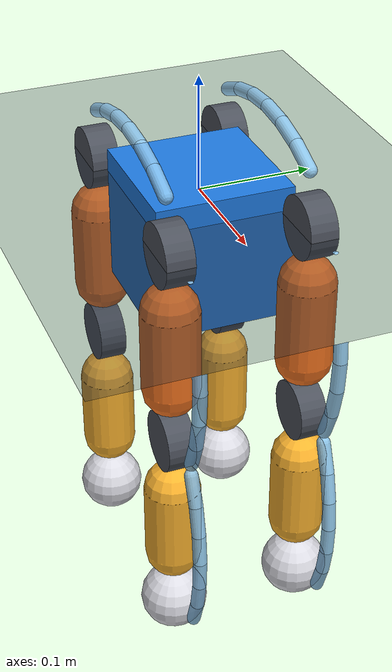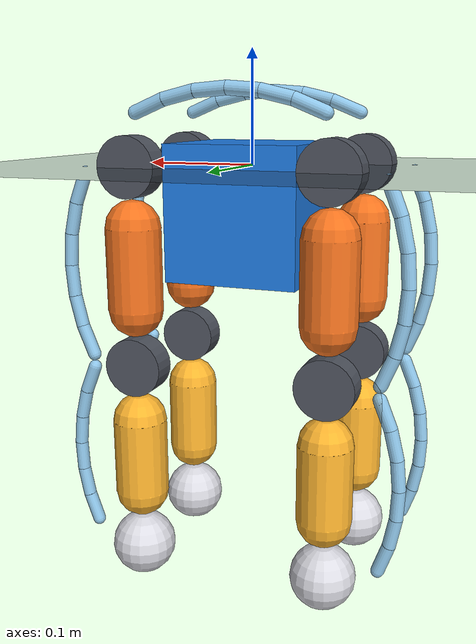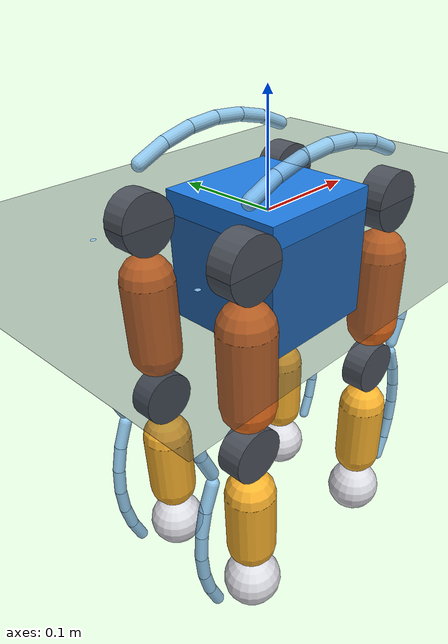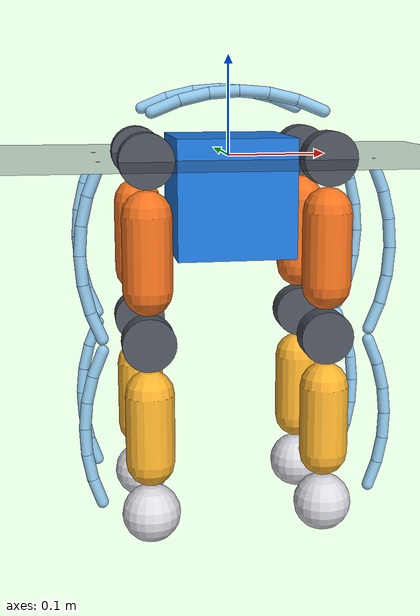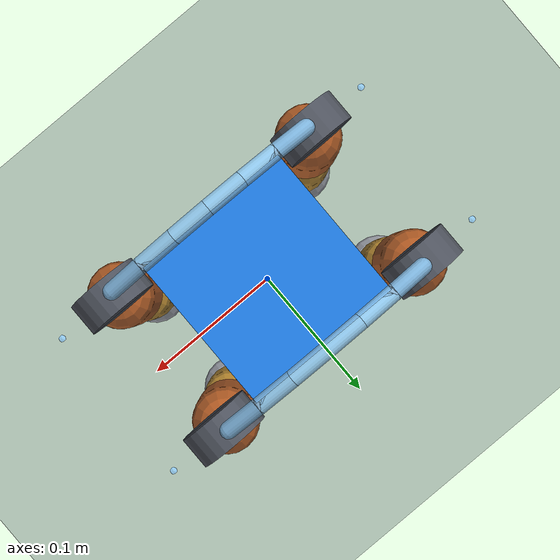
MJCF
<mujoco model="curl_robot_3d">

  <compiler angle="radian" autolimits="true"/>
  <option timestep="0.001" gravity="0 0 -9.81"
          integrator="implicitfast" cone="elliptic"
          iterations="20" ls_iterations="10"/>

  <visual>
    <global azimuth="120" elevation="-12" offwidth="960" offheight="720"/>
    <headlight ambient="0.35 0.35 0.35"
               diffuse="0.65 0.65 0.65"
               specular="0.20 0.20 0.20"/>
  </visual>

  <asset>
    <texture type="skybox" builtin="gradient" rgb1=".18 .23 .30"
             rgb2=".02 .03 .05" width="512" height="512"/>
    <texture name="grid" type="2d" builtin="checker" width="512"
             height="512" rgb1=".18 .22 .27" rgb2=".10 .13 .17"/>
    <material name="ground" texture="grid" texrepeat="1 1"
              texuniform="true" reflectance="0.05"/>
  </asset>

  <default>
    <joint limited="true"/>
    <geom contype="0" conaffinity="1" condim="3"
          friction="0.8 0.02 0.01"
          solref="0.01 1" solimp="0.9 0.95 0.001"/>
    <default class="single_hip_joint">
      <joint damping="0.01"
             armature="0.0016"
             range="-1.12 2.41"/>
    </default>
    <default class="single_knee_joint">
      <joint damping="0.01"
             armature="0.0016"
             range="-0.61 2.69"/>
    </default>
    <default class="single_servo">
      <general forcelimited="true"
               forcerange="-3 3"
               ctrllimited="true"
               gainprm="5 0 0"
               biastype="affine"
               biasprm="0 -5 -0.1"/>
    </default>
    <default class="rolling_shell">
      <geom type="capsule" size="0.006"
            contype="4" conaffinity="7"
            solref="0.003 1" solimp="0.95 0.99 0.001"
            group="1" rgba="0.55 0.78 0.95 0.88"/>
    </default>
    <default class="structure_collision">
      <geom contype="2" conaffinity="7"
            solref="0.003 1" solimp="0.95 0.99 0.001"/>
    </default>
  </default>

  <worldbody>
    <light name="key" directional="true" castshadow="true"
           pos="-1 -2 4" dir="0.25 0.15 -1"
           diffuse="0.85 0.85 0.82" specular="0.20 0.20 0.20"/>
    <light name="fill" directional="true" castshadow="false"
           pos="1 2 3" dir="-0.20 -0.30 -1"
           diffuse="0.30 0.36 0.45" specular="0.05 0.05 0.05"/>
    <camera name="tracking" mode="targetbody" target="torso"
            pos="0.45 -0.55 0.35"/>
    <geom name="floor" type="plane" size="12 6 0.05"
          contype="1" conaffinity="1" material="ground"/>

    <body name="torso" pos="0 0 0">
      <freejoint name="root"/>
      <inertial pos="0.025 0 0.015"
                mass="1.506"
                diaginertia="0.002042720378 0.0085 0.0085"/>
      <geom name="torso_box_proxy" type="box"
            class="structure_collision"
            pos="0 0 -0.04"
            size="0.06 0.06 0.06"
            rgba="0.12 0.48 0.88 1"/>
      <geom name="torso_left_shell_00" class="rolling_shell"
            fromto="-0.084 0.06 0.04556380091 -0.05712080748 0.06 0.05641014695"/>
      <geom name="torso_left_shell_01" class="rolling_shell"
            fromto="-0.05712080748 0.06 0.05641014695 -0.02889983531 0.06 0.06302157212"/>
      <geom name="torso_left_shell_02" class="rolling_shell"
            fromto="-0.02889983531 0.06 0.06302157212 0 0.06 0.06524277266"/>
      <geom name="torso_left_shell_03" class="rolling_shell"
            fromto="0 0.06 0.06524277266 0.02889983531 0.06 0.06302157212"/>
      <geom name="torso_left_shell_04" class="rolling_shell"
            fromto="0.02889983531 0.06 0.06302157212 0.05712080748 0.06 0.05641014695"/>
      <geom name="torso_left_shell_05" class="rolling_shell"
            fromto="0.05712080748 0.06 0.05641014695 0.084 0.06 0.04556380091"/>
      <geom name="torso_right_shell_00" class="rolling_shell"
            fromto="-0.084 -0.06 0.04556380091 -0.05712080748 -0.06 0.05641014695"/>
      <geom name="torso_right_shell_01" class="rolling_shell"
            fromto="-0.05712080748 -0.06 0.05641014695 -0.02889983531 -0.06 0.06302157212"/>
      <geom name="torso_right_shell_02" class="rolling_shell"
            fromto="-0.02889983531 -0.06 0.06302157212 0 -0.06 0.06524277266"/>
      <geom name="torso_right_shell_03" class="rolling_shell"
            fromto="0 -0.06 0.06524277266 0.02889983531 -0.06 0.06302157212"/>
      <geom name="torso_right_shell_04" class="rolling_shell"
            fromto="0.02889983531 -0.06 0.06302157212 0.05712080748 -0.06 0.05641014695"/>
      <geom name="torso_right_shell_05" class="rolling_shell"
            fromto="0.05712080748 -0.06 0.05641014695 0.084 -0.06 0.04556380091"/>

      <body name="front_left_thigh" pos="0.09 0.06 0">
        <joint name="front_left_hip" type="hinge" axis="0 -1 0"
               class="single_hip_joint"/>
        <inertial pos="0 0 -0.0573059111"
                  mass="0.366"
                  diaginertia="0.0013365 0.0013365 0.0001"/>
        <geom name="front_left_thigh_proxy" type="capsule"
              class="structure_collision"
              fromto="0 0 -0.053 0 0 -0.127"
              size="0.025"
              rgba="0.95 0.45 0.12 1"/>
        <geom name="front_left_hip_motor" type="cylinder"
              size="0.027 0.012"
              euler="1.570796327 0 0" contype="0" conaffinity="0"
              rgba="0.30 0.32 0.36 1"/>
        <geom name="front_left_hip_motor_collision_00" type="capsule"
              class="structure_collision"
              fromto="-0.015 0 -0 0.015 0 0"
              size="0.012" rgba="0 0 0 0"/>
        <geom name="front_left_hip_motor_collision_01" type="capsule"
              class="structure_collision"
              fromto="-0.01060660172 0 -0.01060660172 0.01060660172 0 0.01060660172"
              size="0.012" rgba="0 0 0 0"/>
        <geom name="front_left_hip_motor_collision_02" type="capsule"
              class="structure_collision"
              fromto="-9.184850994e-19 0 -0.015 9.184850994e-19 0 0.015"
              size="0.012" rgba="0 0 0 0"/>
        <geom name="front_left_hip_motor_collision_03" type="capsule"
              class="structure_collision"
              fromto="0.01060660172 0 -0.01060660172 -0.01060660172 0 0.01060660172"
              size="0.012" rgba="0 0 0 0"/>
        <geom name="front_left_thigh_shell_00" class="rolling_shell"
              fromto="0.04556380091 0 -0.006 0.05641014695 0 -0.03287919252"/>
        <geom name="front_left_thigh_shell_01" class="rolling_shell"
              fromto="0.05641014695 0 -0.03287919252 0.06302157212 0 -0.06110016469"/>
        <geom name="front_left_thigh_shell_02" class="rolling_shell"
              fromto="0.06302157212 0 -0.06110016469 0.06524277266 0 -0.09"/>
        <geom name="front_left_thigh_shell_03" class="rolling_shell"
              fromto="0.06524277266 0 -0.09 0.06302157212 0 -0.1188998353"/>
        <geom name="front_left_thigh_shell_04" class="rolling_shell"
              fromto="0.06302157212 0 -0.1188998353 0.05641014695 0 -0.1471208075"/>
        <geom name="front_left_thigh_shell_05" class="rolling_shell"
              fromto="0.05641014695 0 -0.1471208075 0.04556380091 0 -0.174"/>
        <body name="front_left_shank" pos="0 0 -0.18">
          <joint name="front_left_knee" type="hinge" axis="0 1 0"
                 class="single_knee_joint"/>
          <inertial pos="0 0 -0.0897967059"
                    mass="0.05"
                    diaginertia="7.75375e-05 7.75375e-05 2e-05"/>
          <geom name="front_left_shank_proxy" type="capsule"
                class="structure_collision"
                fromto="0 0 -0.053 0 0 -0.124"
                size="0.025"
                rgba="0.98 0.70 0.18 1"/>
          <geom name="front_left_knee_motor" type="cylinder"
                size="0.027 0.012"
                euler="1.570796327 0 0" contype="0" conaffinity="0"
                rgba="0.30 0.32 0.36 1"/>
          <geom name="front_left_knee_motor_collision_00" type="capsule"
                class="structure_collision"
                fromto="-0.015 0 -0 0.015 0 0"
                size="0.012" rgba="0 0 0 0"/>
          <geom name="front_left_knee_motor_collision_01" type="capsule"
                class="structure_collision"
                fromto="-0.01060660172 0 -0.01060660172 0.01060660172 0 0.01060660172"
                size="0.012" rgba="0 0 0 0"/>
          <geom name="front_left_knee_motor_collision_02" type="capsule"
                class="structure_collision"
                fromto="-9.184850994e-19 0 -0.015 9.184850994e-19 0 0.015"
                size="0.012" rgba="0 0 0 0"/>
          <geom name="front_left_knee_motor_collision_03" type="capsule"
                class="structure_collision"
                fromto="0.01060660172 0 -0.01060660172 -0.01060660172 0 0.01060660172"
                size="0.012" rgba="0 0 0 0"/>
          <geom name="front_left_shank_shell_00" class="rolling_shell"
                fromto="0.04556380091 0 -0.006 0.05589975364 0 -0.03129260547"/>
          <geom name="front_left_shank_shell_01" class="rolling_shell"
                fromto="0.05589975364 0 -0.03129260547 0.06248318646 0 -0.05781064127"/>
          <geom name="front_left_shank_shell_02" class="rolling_shell"
                fromto="0.06248318646 0 -0.05781064127 0.06517667991 0 -0.08500058248"/>
          <geom name="front_left_shank_shell_03" class="rolling_shell"
                fromto="0.06517667991 0 -0.08500058248 0.0639240113 0 -0.1122948792"/>
          <geom name="front_left_shank_shell_04" class="rolling_shell"
                fromto="0.0639240113 0 -0.1122948792 0.05875132823 0 -0.1391238031"/>
          <geom name="front_left_shank_shell_05" class="rolling_shell"
                fromto="0.05875132823 0 -0.1391238031 0.04976660283 0 -0.1649273401"/>
          <geom name="front_left_foot_proxy" type="sphere"
                class="structure_collision"
                pos="0 0 -0.18"
                size="0.03"
                rgba="0.85 0.85 0.88 1"/>
          <site name="front_left_foot_site"
                pos="0 0 -0.18" size="0.004"/>
        </body>
      </body>
      <body name="front_right_thigh" pos="0.09 -0.06 0">
        <joint name="front_right_hip" type="hinge" axis="0 -1 0"
               class="single_hip_joint"/>
        <inertial pos="0 0 -0.0573059111"
                  mass="0.366"
                  diaginertia="0.0013365 0.0013365 0.0001"/>
        <geom name="front_right_thigh_proxy" type="capsule"
              class="structure_collision"
              fromto="0 0 -0.053 0 0 -0.127"
              size="0.025"
              rgba="0.95 0.45 0.12 1"/>
        <geom name="front_right_hip_motor" type="cylinder"
              size="0.027 0.012"
              euler="1.570796327 0 0" contype="0" conaffinity="0"
              rgba="0.30 0.32 0.36 1"/>
        <geom name="front_right_hip_motor_collision_00" type="capsule"
              class="structure_collision"
              fromto="-0.015 0 -0 0.015 0 0"
              size="0.012" rgba="0 0 0 0"/>
        <geom name="front_right_hip_motor_collision_01" type="capsule"
              class="structure_collision"
              fromto="-0.01060660172 0 -0.01060660172 0.01060660172 0 0.01060660172"
              size="0.012" rgba="0 0 0 0"/>
        <geom name="front_right_hip_motor_collision_02" type="capsule"
              class="structure_collision"
              fromto="-9.184850994e-19 0 -0.015 9.184850994e-19 0 0.015"
              size="0.012" rgba="0 0 0 0"/>
        <geom name="front_right_hip_motor_collision_03" type="capsule"
              class="structure_collision"
              fromto="0.01060660172 0 -0.01060660172 -0.01060660172 0 0.01060660172"
              size="0.012" rgba="0 0 0 0"/>
        <geom name="front_right_thigh_shell_00" class="rolling_shell"
              fromto="0.04556380091 0 -0.006 0.05641014695 0 -0.03287919252"/>
        <geom name="front_right_thigh_shell_01" class="rolling_shell"
              fromto="0.05641014695 0 -0.03287919252 0.06302157212 0 -0.06110016469"/>
        <geom name="front_right_thigh_shell_02" class="rolling_shell"
              fromto="0.06302157212 0 -0.06110016469 0.06524277266 0 -0.09"/>
        <geom name="front_right_thigh_shell_03" class="rolling_shell"
              fromto="0.06524277266 0 -0.09 0.06302157212 0 -0.1188998353"/>
        <geom name="front_right_thigh_shell_04" class="rolling_shell"
              fromto="0.06302157212 0 -0.1188998353 0.05641014695 0 -0.1471208075"/>
        <geom name="front_right_thigh_shell_05" class="rolling_shell"
              fromto="0.05641014695 0 -0.1471208075 0.04556380091 0 -0.174"/>
        <body name="front_right_shank" pos="0 0 -0.18">
          <joint name="front_right_knee" type="hinge" axis="0 1 0"
                 class="single_knee_joint"/>
          <inertial pos="0 0 -0.0897967059"
                    mass="0.05"
                    diaginertia="7.75375e-05 7.75375e-05 2e-05"/>
          <geom name="front_right_shank_proxy" type="capsule"
                class="structure_collision"
                fromto="0 0 -0.053 0 0 -0.124"
                size="0.025"
                rgba="0.98 0.70 0.18 1"/>
          <geom name="front_right_knee_motor" type="cylinder"
                size="0.027 0.012"
                euler="1.570796327 0 0" contype="0" conaffinity="0"
                rgba="0.30 0.32 0.36 1"/>
          <geom name="front_right_knee_motor_collision_00" type="capsule"
                class="structure_collision"
                fromto="-0.015 0 -0 0.015 0 0"
                size="0.012" rgba="0 0 0 0"/>
          <geom name="front_right_knee_motor_collision_01" type="capsule"
                class="structure_collision"
                fromto="-0.01060660172 0 -0.01060660172 0.01060660172 0 0.01060660172"
                size="0.012" rgba="0 0 0 0"/>
          <geom name="front_right_knee_motor_collision_02" type="capsule"
                class="structure_collision"
                fromto="-9.184850994e-19 0 -0.015 9.184850994e-19 0 0.015"
                size="0.012" rgba="0 0 0 0"/>
          <geom name="front_right_knee_motor_collision_03" type="capsule"
                class="structure_collision"
                fromto="0.01060660172 0 -0.01060660172 -0.01060660172 0 0.01060660172"
                size="0.012" rgba="0 0 0 0"/>
          <geom name="front_right_shank_shell_00" class="rolling_shell"
                fromto="0.04556380091 0 -0.006 0.05589975364 0 -0.03129260547"/>
          <geom name="front_right_shank_shell_01" class="rolling_shell"
                fromto="0.05589975364 0 -0.03129260547 0.06248318646 0 -0.05781064127"/>
          <geom name="front_right_shank_shell_02" class="rolling_shell"
                fromto="0.06248318646 0 -0.05781064127 0.06517667991 0 -0.08500058248"/>
          <geom name="front_right_shank_shell_03" class="rolling_shell"
                fromto="0.06517667991 0 -0.08500058248 0.0639240113 0 -0.1122948792"/>
          <geom name="front_right_shank_shell_04" class="rolling_shell"
                fromto="0.0639240113 0 -0.1122948792 0.05875132823 0 -0.1391238031"/>
          <geom name="front_right_shank_shell_05" class="rolling_shell"
                fromto="0.05875132823 0 -0.1391238031 0.04976660283 0 -0.1649273401"/>
          <geom name="front_right_foot_proxy" type="sphere"
                class="structure_collision"
                pos="0 0 -0.18"
                size="0.03"
                rgba="0.85 0.85 0.88 1"/>
          <site name="front_right_foot_site"
                pos="0 0 -0.18" size="0.004"/>
        </body>
      </body>
      <body name="rear_left_thigh" pos="-0.09 0.06 0">
        <joint name="rear_left_hip" type="hinge" axis="0 1 0"
               class="single_hip_joint"/>
        <inertial pos="0 0 -0.0573059111"
                  mass="0.366"
                  diaginertia="0.0013365 0.0013365 0.0001"/>
        <geom name="rear_left_thigh_proxy" type="capsule"
              class="structure_collision"
              fromto="0 0 -0.053 0 0 -0.127"
              size="0.025"
              rgba="0.95 0.45 0.12 1"/>
        <geom name="rear_left_hip_motor" type="cylinder"
              size="0.027 0.012"
              euler="1.570796327 0 0" contype="0" conaffinity="0"
              rgba="0.30 0.32 0.36 1"/>
        <geom name="rear_left_hip_motor_collision_00" type="capsule"
              class="structure_collision"
              fromto="-0.015 0 -0 0.015 0 0"
              size="0.012" rgba="0 0 0 0"/>
        <geom name="rear_left_hip_motor_collision_01" type="capsule"
              class="structure_collision"
              fromto="-0.01060660172 0 -0.01060660172 0.01060660172 0 0.01060660172"
              size="0.012" rgba="0 0 0 0"/>
        <geom name="rear_left_hip_motor_collision_02" type="capsule"
              class="structure_collision"
              fromto="-9.184850994e-19 0 -0.015 9.184850994e-19 0 0.015"
              size="0.012" rgba="0 0 0 0"/>
        <geom name="rear_left_hip_motor_collision_03" type="capsule"
              class="structure_collision"
              fromto="0.01060660172 0 -0.01060660172 -0.01060660172 0 0.01060660172"
              size="0.012" rgba="0 0 0 0"/>
        <geom name="rear_left_thigh_shell_00" class="rolling_shell"
              fromto="-0.04556380091 0 -0.006 -0.05641014695 0 -0.03287919252"/>
        <geom name="rear_left_thigh_shell_01" class="rolling_shell"
              fromto="-0.05641014695 0 -0.03287919252 -0.06302157212 0 -0.06110016469"/>
        <geom name="rear_left_thigh_shell_02" class="rolling_shell"
              fromto="-0.06302157212 0 -0.06110016469 -0.06524277266 0 -0.09"/>
        <geom name="rear_left_thigh_shell_03" class="rolling_shell"
              fromto="-0.06524277266 0 -0.09 -0.06302157212 0 -0.1188998353"/>
        <geom name="rear_left_thigh_shell_04" class="rolling_shell"
              fromto="-0.06302157212 0 -0.1188998353 -0.05641014695 0 -0.1471208075"/>
        <geom name="rear_left_thigh_shell_05" class="rolling_shell"
              fromto="-0.05641014695 0 -0.1471208075 -0.04556380091 0 -0.174"/>
        <body name="rear_left_shank" pos="0 0 -0.18">
          <joint name="rear_left_knee" type="hinge" axis="0 -1 0"
                 class="single_knee_joint"/>
          <inertial pos="0 0 -0.0897967059"
                    mass="0.05"
                    diaginertia="7.75375e-05 7.75375e-05 2e-05"/>
          <geom name="rear_left_shank_proxy" type="capsule"
                class="structure_collision"
                fromto="0 0 -0.053 0 0 -0.124"
                size="0.025"
                rgba="0.98 0.70 0.18 1"/>
          <geom name="rear_left_knee_motor" type="cylinder"
                size="0.027 0.012"
                euler="1.570796327 0 0" contype="0" conaffinity="0"
                rgba="0.30 0.32 0.36 1"/>
          <geom name="rear_left_knee_motor_collision_00" type="capsule"
                class="structure_collision"
                fromto="-0.015 0 -0 0.015 0 0"
                size="0.012" rgba="0 0 0 0"/>
          <geom name="rear_left_knee_motor_collision_01" type="capsule"
                class="structure_collision"
                fromto="-0.01060660172 0 -0.01060660172 0.01060660172 0 0.01060660172"
                size="0.012" rgba="0 0 0 0"/>
          <geom name="rear_left_knee_motor_collision_02" type="capsule"
                class="structure_collision"
                fromto="-9.184850994e-19 0 -0.015 9.184850994e-19 0 0.015"
                size="0.012" rgba="0 0 0 0"/>
          <geom name="rear_left_knee_motor_collision_03" type="capsule"
                class="structure_collision"
                fromto="0.01060660172 0 -0.01060660172 -0.01060660172 0 0.01060660172"
                size="0.012" rgba="0 0 0 0"/>
          <geom name="rear_left_shank_shell_00" class="rolling_shell"
                fromto="-0.04556380091 0 -0.006 -0.05589975364 0 -0.03129260547"/>
          <geom name="rear_left_shank_shell_01" class="rolling_shell"
                fromto="-0.05589975364 0 -0.03129260547 -0.06248318646 0 -0.05781064127"/>
          <geom name="rear_left_shank_shell_02" class="rolling_shell"
                fromto="-0.06248318646 0 -0.05781064127 -0.06517667991 0 -0.08500058248"/>
          <geom name="rear_left_shank_shell_03" class="rolling_shell"
                fromto="-0.06517667991 0 -0.08500058248 -0.0639240113 0 -0.1122948792"/>
          <geom name="rear_left_shank_shell_04" class="rolling_shell"
                fromto="-0.0639240113 0 -0.1122948792 -0.05875132823 0 -0.1391238031"/>
          <geom name="rear_left_shank_shell_05" class="rolling_shell"
                fromto="-0.05875132823 0 -0.1391238031 -0.04976660283 0 -0.1649273401"/>
          <geom name="rear_left_foot_proxy" type="sphere"
                class="structure_collision"
                pos="0 0 -0.18"
                size="0.03"
                rgba="0.85 0.85 0.88 1"/>
          <site name="rear_left_foot_site"
                pos="0 0 -0.18" size="0.004"/>
        </body>
      </body>
      <body name="rear_right_thigh" pos="-0.09 -0.06 0">
        <joint name="rear_right_hip" type="hinge" axis="0 1 0"
               class="single_hip_joint"/>
        <inertial pos="0 0 -0.0573059111"
                  mass="0.366"
                  diaginertia="0.0013365 0.0013365 0.0001"/>
        <geom name="rear_right_thigh_proxy" type="capsule"
              class="structure_collision"
              fromto="0 0 -0.053 0 0 -0.127"
              size="0.025"
              rgba="0.95 0.45 0.12 1"/>
        <geom name="rear_right_hip_motor" type="cylinder"
              size="0.027 0.012"
              euler="1.570796327 0 0" contype="0" conaffinity="0"
              rgba="0.30 0.32 0.36 1"/>
        <geom name="rear_right_hip_motor_collision_00" type="capsule"
              class="structure_collision"
              fromto="-0.015 0 -0 0.015 0 0"
              size="0.012" rgba="0 0 0 0"/>
        <geom name="rear_right_hip_motor_collision_01" type="capsule"
              class="structure_collision"
              fromto="-0.01060660172 0 -0.01060660172 0.01060660172 0 0.01060660172"
              size="0.012" rgba="0 0 0 0"/>
        <geom name="rear_right_hip_motor_collision_02" type="capsule"
              class="structure_collision"
              fromto="-9.184850994e-19 0 -0.015 9.184850994e-19 0 0.015"
              size="0.012" rgba="0 0 0 0"/>
        <geom name="rear_right_hip_motor_collision_03" type="capsule"
              class="structure_collision"
              fromto="0.01060660172 0 -0.01060660172 -0.01060660172 0 0.01060660172"
              size="0.012" rgba="0 0 0 0"/>
        <geom name="rear_right_thigh_shell_00" class="rolling_shell"
              fromto="-0.04556380091 0 -0.006 -0.05641014695 0 -0.03287919252"/>
        <geom name="rear_right_thigh_shell_01" class="rolling_shell"
              fromto="-0.05641014695 0 -0.03287919252 -0.06302157212 0 -0.06110016469"/>
        <geom name="rear_right_thigh_shell_02" class="rolling_shell"
              fromto="-0.06302157212 0 -0.06110016469 -0.06524277266 0 -0.09"/>
        <geom name="rear_right_thigh_shell_03" class="rolling_shell"
              fromto="-0.06524277266 0 -0.09 -0.06302157212 0 -0.1188998353"/>
        <geom name="rear_right_thigh_shell_04" class="rolling_shell"
              fromto="-0.06302157212 0 -0.1188998353 -0.05641014695 0 -0.1471208075"/>
        <geom name="rear_right_thigh_shell_05" class="rolling_shell"
              fromto="-0.05641014695 0 -0.1471208075 -0.04556380091 0 -0.174"/>
        <body name="rear_right_shank" pos="0 0 -0.18">
          <joint name="rear_right_knee" type="hinge" axis="0 -1 0"
                 class="single_knee_joint"/>
          <inertial pos="0 0 -0.0897967059"
                    mass="0.05"
                    diaginertia="7.75375e-05 7.75375e-05 2e-05"/>
          <geom name="rear_right_shank_proxy" type="capsule"
                class="structure_collision"
                fromto="0 0 -0.053 0 0 -0.124"
                size="0.025"
                rgba="0.98 0.70 0.18 1"/>
          <geom name="rear_right_knee_motor" type="cylinder"
                size="0.027 0.012"
                euler="1.570796327 0 0" contype="0" conaffinity="0"
                rgba="0.30 0.32 0.36 1"/>
          <geom name="rear_right_knee_motor_collision_00" type="capsule"
                class="structure_collision"
                fromto="-0.015 0 -0 0.015 0 0"
                size="0.012" rgba="0 0 0 0"/>
          <geom name="rear_right_knee_motor_collision_01" type="capsule"
                class="structure_collision"
                fromto="-0.01060660172 0 -0.01060660172 0.01060660172 0 0.01060660172"
                size="0.012" rgba="0 0 0 0"/>
          <geom name="rear_right_knee_motor_collision_02" type="capsule"
                class="structure_collision"
                fromto="-9.184850994e-19 0 -0.015 9.184850994e-19 0 0.015"
                size="0.012" rgba="0 0 0 0"/>
          <geom name="rear_right_knee_motor_collision_03" type="capsule"
                class="structure_collision"
                fromto="0.01060660172 0 -0.01060660172 -0.01060660172 0 0.01060660172"
                size="0.012" rgba="0 0 0 0"/>
          <geom name="rear_right_shank_shell_00" class="rolling_shell"
                fromto="-0.04556380091 0 -0.006 -0.05589975364 0 -0.03129260547"/>
          <geom name="rear_right_shank_shell_01" class="rolling_shell"
                fromto="-0.05589975364 0 -0.03129260547 -0.06248318646 0 -0.05781064127"/>
          <geom name="rear_right_shank_shell_02" class="rolling_shell"
                fromto="-0.06248318646 0 -0.05781064127 -0.06517667991 0 -0.08500058248"/>
          <geom name="rear_right_shank_shell_03" class="rolling_shell"
                fromto="-0.06517667991 0 -0.08500058248 -0.0639240113 0 -0.1122948792"/>
          <geom name="rear_right_shank_shell_04" class="rolling_shell"
                fromto="-0.0639240113 0 -0.1122948792 -0.05875132823 0 -0.1391238031"/>
          <geom name="rear_right_shank_shell_05" class="rolling_shell"
                fromto="-0.05875132823 0 -0.1391238031 -0.04976660283 0 -0.1649273401"/>
          <geom name="rear_right_foot_proxy" type="sphere"
                class="structure_collision"
                pos="0 0 -0.18"
                size="0.03"
                rgba="0.85 0.85 0.88 1"/>
          <site name="rear_right_foot_site"
                pos="0 0 -0.18" size="0.004"/>
        </body>
      </body>
    </body>
  </worldbody>

  <actuator>
    <general name="front_left_hip_servo" joint="front_left_hip"
             class="single_servo"
             ctrlrange="-1.12 2.41"/>
    <general name="front_left_knee_servo" joint="front_left_knee"
             class="single_servo"
             ctrlrange="-0.61 2.69"/>
    <general name="front_right_hip_servo" joint="front_right_hip"
             class="single_servo"
             ctrlrange="-1.12 2.41"/>
    <general name="front_right_knee_servo" joint="front_right_knee"
             class="single_servo"
             ctrlrange="-0.61 2.69"/>
    <general name="rear_left_hip_servo" joint="rear_left_hip"
             class="single_servo"
             ctrlrange="-1.12 2.41"/>
    <general name="rear_left_knee_servo" joint="rear_left_knee"
             class="single_servo"
             ctrlrange="-0.61 2.69"/>
    <general name="rear_right_hip_servo" joint="rear_right_hip"
             class="single_servo"
             ctrlrange="-1.12 2.41"/>
    <general name="rear_right_knee_servo" joint="rear_right_knee"
             class="single_servo"
             ctrlrange="-0.61 2.69"/>
  </actuator>

  <sensor>
    <framequat name="torso_quat" objtype="body" objname="torso"/>
    <framepos name="torso_position" objtype="body" objname="torso"/>
    <framelinvel name="torso_velocity" objtype="body" objname="torso"/>
    <frameangvel name="torso_angular_velocity" objtype="body" objname="torso"/>
    <jointpos name="front_left_hip_position" joint="front_left_hip"/>
    <jointpos name="front_left_knee_position" joint="front_left_knee"/>
    <jointpos name="front_right_hip_position" joint="front_right_hip"/>
    <jointpos name="front_right_knee_position" joint="front_right_knee"/>
    <jointpos name="rear_left_hip_position" joint="rear_left_hip"/>
    <jointpos name="rear_left_knee_position" joint="rear_left_knee"/>
    <jointpos name="rear_right_hip_position" joint="rear_right_hip"/>
    <jointpos name="rear_right_knee_position" joint="rear_right_knee"/>
  </sensor>

  <keyframe>
    <key name="open"
         qpos="0 0 0.39 1 0 0 0 0 0 0 0 0 0 0 0"
         ctrl="0 0 0 0 0 0 0 0"/>
    <key name="stand"
         qpos="0 0 0.3764923465 1 0 0 0 0.33532733 0.53234438 0.33532733 0.53234438 0.28239372 0.54939539 0.28239372 0.54939539"
         ctrl="0.33532733 0.53234438 0.33532733 0.53234438 0.28239372 0.54939539 0.28239372 0.54939539"/>
    <key name="park"
         qpos="0 0 0.3671041158 1 0 0 0 0.4983797927 0.3491569025 0.4983797927 0.3491569025 0.434095281 0.0107701707 0.434095281 0.0107701707"
         ctrl="0.4983797927 0.3491569025 0.4983797927 0.3491569025 0.434095281 0.0107701707 0.434095281 0.0107701707"/>
    <key name="compact"
         qpos="0 0 0.3391441806 1 0 0 0 0.3141592654 1.011720272 0.3141592654 1.011720272 0.3141592654 1.011720272 0.3141592654 1.011720272"
         ctrl="0.3141592654 1.011720272 0.3141592654 1.011720272 0.3141592654 1.011720272 0.3141592654 1.011720272"/>
  </keyframe>
</mujoco>
